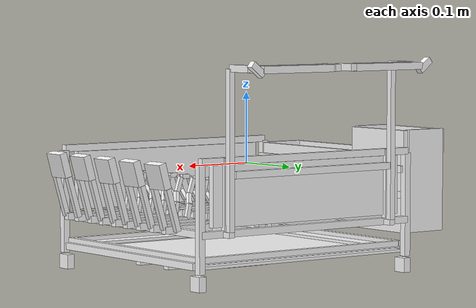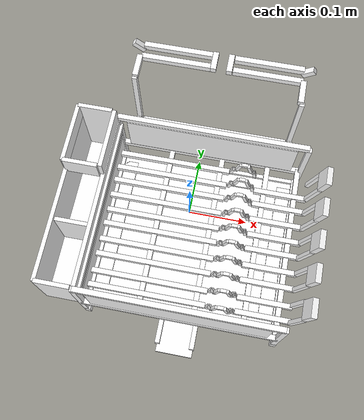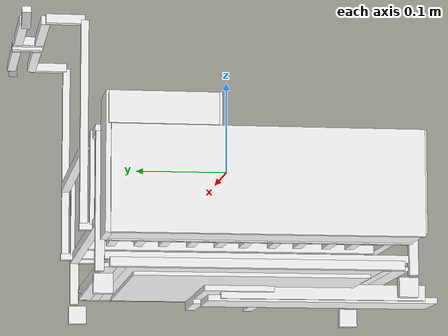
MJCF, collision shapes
<?xml version='1.0' encoding='utf-8'?>
<mujoco model="model">
  <option timestep="0.002" gravity="0.0 0.0 -9.81" />
  <compiler angle="radian" />
  <asset>
    <mesh file="visual/DishRack040.obj" name="DishRack040_vis" />
    <texture file="visual/T_BC001.png" name="DishRack040_material" type="2d" />
    <material name="DishRack040_material" rgba="1 1 1 1.0" texture="DishRack040_material" shininess="0.4472135901451111" specular="0.3103448502657381" />
  </asset>
  <default>
    <default class="visual">
      <geom conaffinity="0" contype="0" group="1" type="mesh" />
    </default>
    <default class="collision">
      <geom group="0" rgba="1 1 1 0.25" density="1.0" solref="0.004 1" solimp="0.998 0.998 0.001" />
    </default>
    <default class="spawn">
      <geom group="0" rgba="1 1 1 0.5" contype="0" conaffinity="0" />
      <site group="0" rgba="1 1 1 0.5" />
    </default>
    <default class="region">
      <geom group="1" conaffinity="0" contype="0" rgba="0 1 0 0" mass="0" />
    </default>
  </default>
  <worldbody>
    <body>
      <body name="object">
        <geom mesh="DishRack040_vis" type="mesh" solimp="0.998 0.998 0.001" solref="0.001 1" friction="0.95 0.3 0.1" class="visual" material="DishRack040_material" />
        <geom type="box" pos="0.01366315 -0.14899265 -0.11953196" size="0.17346982657909393 0.004780089948326349 0.004780103452503681" quat="1.0 0.0 0.0 0.0" class="collision" />
        <geom type="box" pos="0.01348821 -0.01163809 -0.12201339" size="0.1752840280532837 0.15952953696250916 0.0020535136573016644" quat="1.0 0.0 0.0 0.0" class="collision" />
        <geom type="box" pos="0.01366315 0.12955659 -0.11953196" size="0.17346982657909393 0.004780089948326349 0.004780103452503681" quat="1.0 0.0 0.0 0.0" class="collision" />
        <geom type="box" pos="-0.16702763 -0.01106968 -0.11953196" size="0.004780096933245659 0.15389317274093628 0.004780089948326349" quat="1.0 0.0 0.0 0.0" class="collision" />
        <geom type="box" pos="0.19191583 -0.01106968 -0.11953196" size="0.004780096933245659 0.15389317274093628 0.004780089948326349" quat="1.0 0.0 0.0 0.0" class="collision" />
        <geom type="box" pos="0.19175591 -0.17466898 -0.05659135" size="0.00478009320795536 0.00478009320795536 0.07263831049203873" quat="1.0 0.0 0.0 0.0" class="collision" />
        <geom type="box" pos="-0.16436014 -0.17466898 -0.05659135" size="0.00478009320795536 0.00478009320795536 0.07263831794261932" quat="1.0 0.0 0.0 0.0" class="collision" />
        <geom type="box" pos="0.01366315 -0.17563126 0.01907153" size="0.17815001308918 0.004780089948326349 0.004780103452503681" quat="1.0 0.0 0.0 0.0" class="collision" />
        <geom type="box" pos="0.19175591 0.15326559 -0.05659135" size="0.00478009320795536 0.00478009320795536 0.07263832539319992" quat="1.0 0.0 0.0 0.0" class="collision" />
        <geom type="box" pos="-0.16436014 0.15326559 -0.05659135" size="0.00478009320795536 0.00478009320795536 0.07263833284378052" quat="1.0 0.0 0.0 0.0" class="collision" />
        <geom type="box" pos="0.01366315 0.15350921 0.01907153" size="0.17815001308918 0.004780089948326349 0.004780103452503681" quat="1.0 0.0 0.0 0.0" class="collision" />
        <geom type="box" pos="0.01366315 0.16722358 0.00102019" size="0.1333996206521988 0.004780089948326349 0.0047800587490201" quat="1.0 0.0 0.0 0.0" class="collision" />
        <geom type="box" pos="0.15288436 0.16710093 0.03293946" size="0.004080297891050577 0.004080297891050577 0.10794998705387115" quat="1.0 0.0 0.0 0.0" class="collision" />
        <geom type="box" pos="-0.12512309 0.16710093 0.03293946" size="0.0040802983567118645 0.0040802983567118645 0.10794998705387115" quat="1.0 0.0 0.0 0.0" class="collision" />
        <geom type="box" pos="0.15288436 0.15654886 -0.02627855" size="0.004080317448824644 0.004080317448824644 0.049622442573308945" quat="1.0 0.0 0.0 0.0" class="collision" />
        <geom type="box" pos="-0.12512309 0.15654886 -0.02627855" size="0.004080317448824644 0.004080317448824644 0.049622442573308945" quat="1.0 0.0 0.0 0.0" class="collision" />
        <geom type="box" pos="0.12786105 -0.01106968 -0.07843900" size="0.004780096933245659 0.16032738983631134 0.004780066665261984" quat="1.0 0.0 0.0 0.0" class="collision" />
        <geom type="box" pos="0.03792597 -0.01106968 -0.07843900" size="0.004780096933245659 0.16032738983631134 0.004780066665261984" quat="1.0 0.0 0.0 0.0" class="collision" />
        <geom type="box" pos="-0.06204754 -0.01106968 -0.07843900" size="0.004780096933245659 0.16032738983631134 0.004780067130923271" quat="1.0 0.0 0.0 0.0" class="collision" />
        <geom type="box" pos="-0.16829801 -0.01106968 -0.07843900" size="0.004780096933245659 0.16032738983631134 0.0047800675965845585" quat="1.0 0.0 0.0 0.0" class="collision" />
        <geom type="box" pos="-0.16619753 -0.01106968 -0.04375087" size="0.004780096933245659 0.16032738983631134 0.0047800675965845585" quat="1.0 0.0 0.0 0.0" class="collision" />
        <geom type="box" pos="-0.16109455 -0.01106968 -0.00706404" size="0.004780097398906946 0.16350683569908142 0.0047800675965845585" quat="1.0 0.0 0.0 0.0" class="collision" />
        <geom type="box" pos="-0.05230524 0.12464474 -0.07435883" size="0.10770559310913086 0.004780089948326349 0.004780126735568047" quat="1.0 0.0 0.0 0.0" class="collision" />
        <geom type="box" pos="-0.05365872 0.09452375 -0.07435883" size="0.10770559310913086 0.004780089948326349 0.004780126269906759" quat="1.0 0.0 0.0 0.0" class="collision" />
        <geom type="box" pos="-0.05365872 0.06684500 -0.07435883" size="0.10770559310913086 0.004780089948326349 0.004780126269906759" quat="1.0 0.0 0.0 0.0" class="collision" />
        <geom type="box" pos="-0.05365872 0.03548660 -0.07435883" size="0.10770559310913086 0.004780089948326349 0.004780125804245472" quat="1.0 0.0 0.0 0.0" class="collision" />
        <geom type="box" pos="-0.05259563 0.00471435 -0.07435883" size="0.10770559310913086 0.004780089948326349 0.004780125338584185" quat="1.0 0.0 0.0 0.0" class="collision" />
        <geom type="box" pos="-0.05259563 -0.02312722 -0.07435883" size="0.10770559310913086 0.004780089948326349 0.004780124872922897" quat="1.0 0.0 0.0 0.0" class="collision" />
        <geom type="box" pos="-0.05259563 -0.05507175 -0.07435883" size="0.10770559310913086 0.004780089948326349 0.00478012440726161" quat="1.0 0.0 0.0 0.0" class="collision" />
        <geom type="box" pos="-0.05259563 -0.08379252 -0.07435883" size="0.10770559310913086 0.004780089948326349 0.004780123941600323" quat="1.0 0.0 0.0 0.0" class="collision" />
        <geom type="box" pos="-0.05259563 -0.11661626 -0.07435883" size="0.10770559310913086 0.004780089948326349 0.004780123475939035" quat="1.0 0.0 0.0 0.0" class="collision" />
        <geom type="box" pos="-0.05259563 -0.14299248 -0.07435883" size="0.10770559310913086 0.004780089948326349 0.004780123475939035" quat="1.0 0.0 0.0 0.0" class="collision" />
        <geom type="box" pos="0.21602330 0.12464474 -0.04486481" size="0.0037713772617280483 0.0037713772617280483 0.029460962861776352" quat="0.1405487060546875 -0.0 -0.9900737404823303 -0.0" class="collision" />
        <geom type="box" pos="0.15881837 0.09452375 -0.07435883" size="0.050277382135391235 0.004780089948326349 0.004780070390552282" quat="1.0 0.0 0.0 0.0" class="collision" />
        <geom type="box" pos="0.15881837 0.06684500 -0.07435883" size="0.050277382135391235 0.004780089948326349 0.00478007085621357" quat="1.0 0.0 0.0 0.0" class="collision" />
        <geom type="box" pos="0.15881837 0.03548660 -0.07435883" size="0.050277382135391235 0.004780089948326349 0.004780071321874857" quat="1.0 0.0 0.0 0.0" class="collision" />
        <geom type="box" pos="0.15931462 0.00471435 -0.07435883" size="0.050277382135391235 0.004780089948326349 0.004780071787536144" quat="1.0 0.0 0.0 0.0" class="collision" />
        <geom type="box" pos="0.15931462 -0.02312722 -0.07435883" size="0.050277382135391235 0.004780089948326349 0.0047800722531974316" quat="1.0 0.0 0.0 0.0" class="collision" />
        <geom type="box" pos="0.15931462 -0.05507175 -0.07435883" size="0.050277382135391235 0.004780089948326349 0.0047800722531974316" quat="1.0 0.0 0.0 0.0" class="collision" />
        <geom type="box" pos="0.15931462 -0.08379252 -0.07435883" size="0.050277382135391235 0.004780089948326349 0.004780072718858719" quat="1.0 0.0 0.0 0.0" class="collision" />
        <geom type="box" pos="0.15931462 -0.11661626 -0.07435883" size="0.050277382135391235 0.004780089948326349 0.004780073184520006" quat="1.0 0.0 0.0 0.0" class="collision" />
        <geom type="box" pos="0.15931462 -0.14299248 -0.07435883" size="0.050277382135391235 0.004780089948326349 0.0047800736501812935" quat="1.0 0.0 0.0 0.0" class="collision" />
        <geom type="box" pos="0.10380656 -0.05591560 -0.06217969" size="0.002910762559622526 0.0029107623267918825 0.010570663027465343" quat="0.10435331612825394 0.0 0.994540274143219 0.0" class="collision" />
        <geom type="box" pos="0.09256197 -0.06330690 -0.02763671" size="0.0029107623267918825 0.0029107623267918825 0.010570662096142769" quat="0.15572857856750488 0.0 0.987799882888794 0.0" class="collision" />
        <geom type="box" pos="0.09888213 -0.06079009 -0.04532047" size="0.0029107623267918825 0.0029107623267918825 0.007877163589000702" quat="0.15189847350120544 -0.03432556986808777 0.963505208492279 0.21773000061511993" class="collision" />
        <geom type="box" pos="0.06079506 -0.05591560 -0.06217969" size="0.0029107623267918825 0.0029107623267918825 0.010570662096142769" quat="0.10435343533754349 -0.0 -0.994540274143219 -0.0" class="collision" />
        <geom type="box" pos="0.07203964 -0.06330690 -0.02763671" size="0.0029107623267918825 0.0029107623267918825 0.010570663027465343" quat="0.15572869777679443 -0.0 -0.987799882888794 -0.0" class="collision" />
        <geom type="box" pos="0.06571948 -0.06079009 -0.04532047" size="0.0029107623267918825 0.002910762559622526 0.007877163589000702" quat="0.151898592710495 -0.034325581043958664 -0.963505208492279 -0.21772995591163635" class="collision" />
        <geom type="box" pos="0.08220820 -0.06330690 -0.01699015" size="0.005794894881546497 0.0029107623267918825 0.002910763258114457" quat="1.0 0.0 0.0 0.0" class="collision" />
        <geom type="box" pos="0.10380656 -0.08569743 -0.06217969" size="0.002910762559622526 0.0029107623267918825 0.010570663027465343" quat="0.10435331612825394 0.0 0.994540274143219 0.0" class="collision" />
        <geom type="box" pos="0.09256197 -0.09308873 -0.02763671" size="0.0029107623267918825 0.0029107623267918825 0.010570662096142769" quat="0.15572857856750488 0.0 0.987799882888794 0.0" class="collision" />
        <geom type="box" pos="0.09888213 -0.09057192 -0.04532047" size="0.0029107623267918825 0.0029107623267918825 0.007877163589000702" quat="0.15189847350120544 -0.03432556986808777 0.963505208492279 0.21773000061511993" class="collision" />
        <geom type="box" pos="0.06079506 -0.08569743 -0.06217969" size="0.0029107623267918825 0.0029107623267918825 0.010570662096142769" quat="0.10435343533754349 -0.0 -0.994540274143219 -0.0" class="collision" />
        <geom type="box" pos="0.07203964 -0.09308873 -0.02763671" size="0.0029107623267918825 0.0029107623267918825 0.010570663027465343" quat="0.15572869777679443 -0.0 -0.987799882888794 -0.0" class="collision" />
        <geom type="box" pos="0.06571948 -0.09057192 -0.04532047" size="0.0029107623267918825 0.002910762559622526 0.007877163589000702" quat="0.151898592710495 -0.034325581043958664 -0.963505208492279 -0.21772995591163635" class="collision" />
        <geom type="box" pos="0.08220820 -0.09308873 -0.01699015" size="0.005794894881546497 0.0029107623267918825 0.002910763258114457" quat="1.0 0.0 0.0 0.0" class="collision" />
        <geom type="box" pos="0.10380656 -0.11584201 -0.06217969" size="0.002910762559622526 0.0029107623267918825 0.010570663027465343" quat="0.10435331612825394 0.0 0.994540274143219 0.0" class="collision" />
        <geom type="box" pos="0.09256197 -0.12323331 -0.02763671" size="0.0029107623267918825 0.0029107623267918825 0.010570662096142769" quat="0.15572857856750488 0.0 0.987799882888794 0.0" class="collision" />
        <geom type="box" pos="0.09888213 -0.12071650 -0.04532047" size="0.0029107623267918825 0.0029107623267918825 0.007877163589000702" quat="0.15189847350120544 -0.03432556986808777 0.963505208492279 0.21773000061511993" class="collision" />
        <geom type="box" pos="0.06079506 -0.11584201 -0.06217969" size="0.0029107623267918825 0.0029107623267918825 0.010570662096142769" quat="0.10435343533754349 -0.0 -0.994540274143219 -0.0" class="collision" />
        <geom type="box" pos="0.07203964 -0.12323331 -0.02763671" size="0.0029107623267918825 0.0029107623267918825 0.010570663027465343" quat="0.15572869777679443 -0.0 -0.987799882888794 -0.0" class="collision" />
        <geom type="box" pos="0.06571948 -0.12071650 -0.04532047" size="0.0029107623267918825 0.002910762559622526 0.007877163589000702" quat="0.151898592710495 -0.034325581043958664 -0.963505208492279 -0.21772995591163635" class="collision" />
        <geom type="box" pos="0.08220820 -0.12323331 -0.01699015" size="0.005794894881546497 0.0029107623267918825 0.002910763258114457" quat="1.0 0.0 0.0 0.0" class="collision" />
        <geom type="box" pos="0.10380656 -0.14549031 -0.06217969" size="0.002910762559622526 0.0029107623267918825 0.010570663027465343" quat="0.10435331612825394 0.0 0.994540274143219 0.0" class="collision" />
        <geom type="box" pos="0.09256197 -0.15288162 -0.02763671" size="0.0029107623267918825 0.0029107623267918825 0.010570662096142769" quat="0.15572857856750488 0.0 0.987799882888794 0.0" class="collision" />
        <geom type="box" pos="0.09888213 -0.15036481 -0.04532047" size="0.0029107623267918825 0.0029107623267918825 0.007877163589000702" quat="0.15189847350120544 -0.03432556986808777 0.963505208492279 0.21773000061511993" class="collision" />
        <geom type="box" pos="0.06079506 -0.14549031 -0.06217969" size="0.0029107623267918825 0.0029107623267918825 0.010570662096142769" quat="0.10435343533754349 -0.0 -0.994540274143219 -0.0" class="collision" />
        <geom type="box" pos="0.07203964 -0.15288162 -0.02763671" size="0.0029107623267918825 0.0029107623267918825 0.010570663027465343" quat="0.15572869777679443 -0.0 -0.987799882888794 -0.0" class="collision" />
        <geom type="box" pos="0.06571948 -0.15036481 -0.04532047" size="0.0029107623267918825 0.002910762559622526 0.007877163589000702" quat="0.151898592710495 -0.034325581043958664 -0.963505208492279 -0.21772995591163635" class="collision" />
        <geom type="box" pos="0.08220820 -0.15288162 -0.01699015" size="0.005794894881546497 0.0029107623267918825 0.002910763258114457" quat="1.0 0.0 0.0 0.0" class="collision" />
        <geom type="box" pos="0.10380656 -0.02640440 -0.06217969" size="0.002910762559622526 0.0029107623267918825 0.010570663027465343" quat="0.10435331612825394 0.0 0.994540274143219 0.0" class="collision" />
        <geom type="box" pos="0.09256197 -0.03379571 -0.02763671" size="0.0029107623267918825 0.0029107623267918825 0.010570662096142769" quat="0.15572857856750488 0.0 0.987799882888794 0.0" class="collision" />
        <geom type="box" pos="0.09888213 -0.03127890 -0.04532047" size="0.0029107623267918825 0.0029107623267918825 0.007877163589000702" quat="0.15189847350120544 -0.03432556986808777 0.963505208492279 0.21773000061511993" class="collision" />
        <geom type="box" pos="0.06079506 -0.02640440 -0.06217969" size="0.0029107623267918825 0.0029107623267918825 0.010570662096142769" quat="0.10435343533754349 -0.0 -0.994540274143219 -0.0" class="collision" />
        <geom type="box" pos="0.07203964 -0.03379571 -0.02763671" size="0.0029107623267918825 0.0029107623267918825 0.010570663027465343" quat="0.15572869777679443 -0.0 -0.987799882888794 -0.0" class="collision" />
        <geom type="box" pos="0.06571948 -0.03127890 -0.04532047" size="0.0029107623267918825 0.002910762559622526 0.007877163589000702" quat="0.151898592710495 -0.034325581043958664 -0.963505208492279 -0.21772995591163635" class="collision" />
        <geom type="box" pos="0.08220820 -0.03379571 -0.01699015" size="0.005794894881546497 0.0029107623267918825 0.002910763258114457" quat="1.0 0.0 0.0 0.0" class="collision" />
        <geom type="box" pos="0.10380656 0.00367083 -0.06217969" size="0.002910762559622526 0.0029107623267918825 0.010570663027465343" quat="0.10435331612825394 0.0 0.994540274143219 0.0" class="collision" />
        <geom type="box" pos="0.09256197 -0.00372047 -0.02763671" size="0.0029107623267918825 0.0029107623267918825 0.010570662096142769" quat="0.15572857856750488 0.0 0.987799882888794 0.0" class="collision" />
        <geom type="box" pos="0.09888213 -0.00120367 -0.04532047" size="0.0029107623267918825 0.0029107623267918825 0.007877163589000702" quat="0.15189847350120544 -0.03432556986808777 0.963505208492279 0.21773000061511993" class="collision" />
        <geom type="box" pos="0.06079506 0.00367083 -0.06217969" size="0.0029107623267918825 0.0029107623267918825 0.010570662096142769" quat="0.10435343533754349 -0.0 -0.994540274143219 -0.0" class="collision" />
        <geom type="box" pos="0.07203964 -0.00372047 -0.02763671" size="0.0029107623267918825 0.0029107623267918825 0.010570663027465343" quat="0.15572869777679443 -0.0 -0.987799882888794 -0.0" class="collision" />
        <geom type="box" pos="0.06571948 -0.00120367 -0.04532047" size="0.0029107623267918825 0.002910762559622526 0.007877163589000702" quat="0.151898592710495 -0.034325581043958664 -0.963505208492279 -0.21772995591163635" class="collision" />
        <geom type="box" pos="0.08220820 -0.00372047 -0.01699015" size="0.005794894881546497 0.0029107623267918825 0.002910763258114457" quat="1.0 0.0 0.0 0.0" class="collision" />
        <geom type="box" pos="0.10380656 0.03397648 -0.06217969" size="0.002910762559622526 0.0029107623267918825 0.010570663027465343" quat="0.10435331612825394 0.0 0.994540274143219 0.0" class="collision" />
        <geom type="box" pos="0.09256197 0.02658517 -0.02763671" size="0.0029107623267918825 0.0029107623267918825 0.010570662096142769" quat="0.15572857856750488 0.0 0.987799882888794 0.0" class="collision" />
        <geom type="box" pos="0.09888213 0.02910198 -0.04532047" size="0.0029107623267918825 0.0029107623267918825 0.007877163589000702" quat="0.15189847350120544 -0.03432556986808777 0.963505208492279 0.21773000061511993" class="collision" />
        <geom type="box" pos="0.06079506 0.03397648 -0.06217969" size="0.0029107623267918825 0.0029107623267918825 0.010570662096142769" quat="0.10435343533754349 -0.0 -0.994540274143219 -0.0" class="collision" />
        <geom type="box" pos="0.07203964 0.02658517 -0.02763671" size="0.0029107623267918825 0.0029107623267918825 0.010570663027465343" quat="0.15572869777679443 -0.0 -0.987799882888794 -0.0" class="collision" />
        <geom type="box" pos="0.06571948 0.02910198 -0.04532047" size="0.0029107623267918825 0.002910762559622526 0.007877163589000702" quat="0.151898592710495 -0.034325581043958664 -0.963505208492279 -0.21772995591163635" class="collision" />
        <geom type="box" pos="0.08220820 0.02658517 -0.01699015" size="0.005794894881546497 0.0029107623267918825 0.002910763258114457" quat="1.0 0.0 0.0 0.0" class="collision" />
        <geom type="box" pos="0.10380656 0.06424525 -0.06217969" size="0.002910762559622526 0.0029107623267918825 0.010570663027465343" quat="0.10435331612825394 0.0 0.994540274143219 0.0" class="collision" />
        <geom type="box" pos="0.09256197 0.05685395 -0.02763671" size="0.0029107623267918825 0.0029107623267918825 0.010570662096142769" quat="0.15572857856750488 0.0 0.987799882888794 0.0" class="collision" />
        <geom type="box" pos="0.09888213 0.05937075 -0.04532047" size="0.0029107623267918825 0.0029107623267918825 0.007877163589000702" quat="0.15189847350120544 -0.03432556986808777 0.963505208492279 0.21773000061511993" class="collision" />
        <geom type="box" pos="0.06079506 0.06424525 -0.06217969" size="0.0029107623267918825 0.0029107623267918825 0.010570662096142769" quat="0.10435343533754349 -0.0 -0.994540274143219 -0.0" class="collision" />
        <geom type="box" pos="0.07203964 0.05685395 -0.02763671" size="0.0029107623267918825 0.0029107623267918825 0.010570663027465343" quat="0.15572869777679443 -0.0 -0.987799882888794 -0.0" class="collision" />
        <geom type="box" pos="0.06571948 0.05937075 -0.04532047" size="0.0029107623267918825 0.002910762559622526 0.007877163589000702" quat="0.151898592710495 -0.034325581043958664 -0.963505208492279 -0.21772995591163635" class="collision" />
        <geom type="box" pos="0.08220820 0.05685395 -0.01699015" size="0.005794894881546497 0.0029107623267918825 0.002910763258114457" quat="1.0 0.0 0.0 0.0" class="collision" />
        <geom type="box" pos="0.10380656 0.09427927 -0.06217969" size="0.002910762559622526 0.0029107623267918825 0.010570663027465343" quat="0.10435331612825394 0.0 0.994540274143219 0.0" class="collision" />
        <geom type="box" pos="0.09256197 0.08688796 -0.02763671" size="0.0029107623267918825 0.0029107623267918825 0.010570662096142769" quat="0.15572857856750488 0.0 0.987799882888794 0.0" class="collision" />
        <geom type="box" pos="0.09888213 0.08940477 -0.04532047" size="0.0029107623267918825 0.0029107623267918825 0.007877163589000702" quat="0.15189847350120544 -0.03432556986808777 0.963505208492279 0.21773000061511993" class="collision" />
        <geom type="box" pos="0.06079506 0.09427927 -0.06217969" size="0.0029107623267918825 0.0029107623267918825 0.010570662096142769" quat="0.10435343533754349 -0.0 -0.994540274143219 -0.0" class="collision" />
        <geom type="box" pos="0.07203964 0.08688796 -0.02763671" size="0.0029107623267918825 0.0029107623267918825 0.010570663027465343" quat="0.15572869777679443 -0.0 -0.987799882888794 -0.0" class="collision" />
        <geom type="box" pos="0.06571948 0.08940477 -0.04532047" size="0.0029107623267918825 0.002910762559622526 0.007877163589000702" quat="0.151898592710495 -0.034325581043958664 -0.963505208492279 -0.21772995591163635" class="collision" />
        <geom type="box" pos="0.08220820 0.08688796 -0.01699015" size="0.005794894881546497 0.0029107623267918825 0.002910763258114457" quat="1.0 0.0 0.0 0.0" class="collision" />
        <geom type="box" pos="0.10380656 0.12389441 -0.06217969" size="0.002910762559622526 0.0029107623267918825 0.010570663027465343" quat="0.10435331612825394 0.0 0.994540274143219 0.0" class="collision" />
        <geom type="box" pos="0.09256197 0.11650310 -0.02763671" size="0.0029107623267918825 0.0029107623267918825 0.010570662096142769" quat="0.15572857856750488 0.0 0.987799882888794 0.0" class="collision" />
        <geom type="box" pos="0.09888213 0.11901991 -0.04532047" size="0.0029107623267918825 0.0029107623267918825 0.007877163589000702" quat="0.15189847350120544 -0.03432556986808777 0.963505208492279 0.21773000061511993" class="collision" />
        <geom type="box" pos="0.06079506 0.12389441 -0.06217969" size="0.0029107623267918825 0.0029107623267918825 0.010570662096142769" quat="0.10435343533754349 -0.0 -0.994540274143219 -0.0" class="collision" />
        <geom type="box" pos="0.07203964 0.11650310 -0.02763671" size="0.0029107623267918825 0.0029107623267918825 0.010570663027465343" quat="0.15572869777679443 -0.0 -0.987799882888794 -0.0" class="collision" />
        <geom type="box" pos="0.06571948 0.11901991 -0.04532047" size="0.0029107623267918825 0.002910762559622526 0.007877163589000702" quat="0.151898592710495 -0.034325581043958664 -0.963505208492279 -0.21772995591163635" class="collision" />
        <geom type="box" pos="0.08220820 0.11650310 -0.01699015" size="0.005794894881546497 0.0029107623267918825 0.002910763258114457" quat="1.0 0.0 0.0 0.0" class="collision" />
        <geom type="box" pos="0.21602330 0.09414179 -0.04486481" size="0.0037713772617280483 0.0037713772617280483 0.029460962861776352" quat="0.1405487060546875 -0.0 -0.9900737404823303 -0.0" class="collision" />
        <geom type="box" pos="0.21602330 0.06484879 -0.04486481" size="0.0037713772617280483 0.0037713772617280483 0.029460962861776352" quat="0.1405487060546875 -0.0 -0.9900737404823303 -0.0" class="collision" />
        <geom type="box" pos="0.21602330 0.03395666 -0.04486481" size="0.0037713772617280483 0.0037713772617280483 0.029460962861776352" quat="0.1405487060546875 -0.0 -0.9900737404823303 -0.0" class="collision" />
        <geom type="box" pos="0.21602330 0.00453034 -0.04486481" size="0.0037713772617280483 0.0037713772617280483 0.029460962861776352" quat="0.1405487060546875 -0.0 -0.9900737404823303 -0.0" class="collision" />
        <geom type="box" pos="0.21602330 -0.02532157 -0.04486481" size="0.0037713772617280483 0.0037713772617280483 0.029460962861776352" quat="0.1405487060546875 -0.0 -0.9900737404823303 -0.0" class="collision" />
        <geom type="box" pos="0.21602330 -0.05537043 -0.04486481" size="0.0037713772617280483 0.0037713772617280483 0.029460962861776352" quat="0.1405487060546875 -0.0 -0.9900737404823303 -0.0" class="collision" />
        <geom type="box" pos="0.21602330 -0.08528804 -0.04486481" size="0.0037713772617280483 0.0037713772617280483 0.029460962861776352" quat="0.1405487060546875 -0.0 -0.9900737404823303 -0.0" class="collision" />
        <geom type="box" pos="0.21602330 -0.11467946 -0.04486481" size="0.0037713772617280483 0.0037713772617280483 0.029460962861776352" quat="0.1405487060546875 -0.0 -0.9900737404823303 -0.0" class="collision" />
        <geom type="box" pos="0.21602330 -0.14552114 -0.04486481" size="0.0037713772617280483 0.0037713772617280483 0.029460962861776352" quat="0.1405487060546875 -0.0 -0.9900737404823303 -0.0" class="collision" />
        <geom type="box" pos="0.18650616 -0.01106968 -0.07705919" size="0.004780097398906946 0.16499696671962738 0.004780089948326349" quat="1.0 0.0 0.0 0.0" class="collision" />
        <geom type="box" pos="-0.06326750 0.20800903 0.14121846" size="0.05824814364314079 0.004780089948326349 0.004780094139277935" quat="1.0 0.0 0.0 0.0" class="collision" />
        <geom type="box" pos="0.09108226 0.20800903 0.14121846" size="0.05824814364314079 0.004780089948326349 0.004780094139277935" quat="1.0 0.0 0.0 0.0" class="collision" />
        <geom type="box" pos="-0.12432358 0.18773841 0.14163552" size="0.004780090879648924 0.020439039915800095 0.004780089948326349" quat="1.0 0.0 0.0 0.0" class="collision" />
        <geom type="box" pos="0.15018453 0.18773841 0.14163552" size="0.004780090879648924 0.020439039915800095 0.004780089948326349" quat="1.0 0.0 0.0 0.0" class="collision" />
        <geom type="box" pos="-0.06326750 0.23096611 0.14121846" size="0.05824814364314079 0.004780089948326349 0.004780094139277935" quat="1.0 0.0 0.0 0.0" class="collision" />
        <geom type="box" pos="0.09108226 0.23096611 0.14121846" size="0.05824814364314079 0.004780089948326349 0.004780094139277935" quat="1.0 0.0 0.0 0.0" class="collision" />
        <geom type="box" pos="-0.12942829 0.22912774 0.14163552" size="0.004780089948326349 0.004780089948326349 0.011501421220600605" quat="0.3102211058139801 0.6354233026504517 0.6354234218597412 0.3102211058139801" class="collision" />
        <geom type="box" pos="0.15657047 0.22912774 0.14163552" size="0.004780089948326349 0.004780089948326349 0.011501421220600605" quat="0.31022119522094727 -0.6354233026504517 -0.6354234218597412 0.31022101640701294" class="collision" />
        <geom type="box" pos="0.02674380 0.21961883 0.14163552" size="0.0047800904139876366 0.01681361347436905 0.004780089948326349" quat="1.0 0.0 0.0 0.0" class="collision" />
        <geom type="box" pos="-0.00006245 0.21961883 0.14163552" size="0.0047800904139876366 0.01681361347436905 0.004780089948326349" quat="1.0 0.0 0.0 0.0" class="collision" />
        <geom type="box" pos="0.01348821 -0.01163809 -0.12608717" size="0.1378050595521927 0.12541987001895905 0.0020535094663500786" quat="1.0 0.0 0.0 0.0" class="collision" />
        <geom type="box" pos="0.01348821 -0.15338157 -0.11606823" size="0.1752840131521225 0.014941152185201645 0.0020535218063741922" quat="1.0 0.0 0.0 0.0" class="collision" />
        <geom type="box" pos="0.01348821 0.12972376 -0.11606823" size="0.1752840131521225 0.014941152185201645 0.0020535215735435486" quat="1.0 0.0 0.0 0.0" class="collision" />
        <geom type="box" pos="0.16991388 -0.00540656 -0.11606823" size="0.014941234141588211 0.13324517011642456 0.002053521340712905" quat="1.0 0.0 0.0 0.0" class="collision" />
        <geom type="box" pos="-0.14548806 -0.00540656 -0.11606823" size="0.014941232278943062 0.13324515521526337 0.0020535211078822613" quat="1.0 0.0 0.0 0.0" class="collision" />
        <geom type="box" pos="0.18539575 -0.01106968 -0.11212468" size="0.0038828456308692694 0.15878170728683472 0.003882840508595109" quat="1.0 0.0 0.0 0.0" class="collision" />
        <geom type="box" pos="-0.16086441 -0.01106968 -0.11212468" size="0.003882845863699913 0.1587817221879959 0.0038828407414257526" quat="1.0 0.0 0.0 0.0" class="collision" />
        <geom type="box" pos="0.01193067 -0.16597661 -0.11212468" size="0.17100702226161957 0.003882915247231722 0.0038828530814498663" quat="1.0 0.0 0.0 0.0" class="collision" />
        <geom type="box" pos="0.01193067 0.14258958 -0.11212468" size="0.17100702226161957 0.003882915247231722 0.00388285331428051" quat="1.0 0.0 0.0 0.0" class="collision" />
        <geom type="box" pos="0.11538751 0.02177992 -0.13287397" size="0.03887316584587097 0.005578517913818359 0.005048004444688559" quat="1.0 0.0 0.0 0.0" class="collision" />
        <geom type="box" pos="0.11538751 -0.04512261 -0.13287397" size="0.03887316584587097 0.005578517913818359 0.005048004444688559" quat="1.0 0.0 0.0 0.0" class="collision" />
        <geom type="box" pos="0.01348821 -0.10417641 -0.14046790" size="0.03398590907454491 0.12691304087638855 0.0033008079044520855" quat="1.0 0.0 0.0 0.0" class="collision" />
        <geom type="box" pos="0.01348821 -0.01023716 -0.12975552" size="0.04670342430472374 0.038526035845279694 0.0044117639772593975" quat="1.0 0.0 0.0 0.0" class="collision" />
        <geom type="box" pos="-0.01970951 -0.10417641 -0.13288753" size="0.004427243024110794 0.1129511371254921 0.0085249999538064" quat="1.0 0.0 0.0 0.0" class="collision" />
        <geom type="box" pos="0.04472419 -0.10417641 -0.13288753" size="0.004427243024110794 0.1129511222243309 0.008524999022483826" quat="1.0 0.0 0.0 0.0" class="collision" />
        <geom type="box" pos="0.01366315 -0.17563126 -0.07652089" size="0.17815001308918 0.004780089948326349 0.004780103452503681" quat="1.0 0.0 0.0 0.0" class="collision" />
        <geom type="box" pos="0.01366315 0.15350921 -0.07742048" size="0.17815001308918 0.004780089948326349 0.004780103452503681" quat="1.0 0.0 0.0 0.0" class="collision" />
        <geom type="box" pos="0.19215351 0.14933096 -0.14170131" size="0.005604991689324379 0.010191744193434715 0.010191744193434715" quat="1.0 0.0 0.0 0.0" class="collision" />
        <geom type="box" pos="0.19215351 -0.16942576 -0.14170131" size="0.005604991689324379 0.010191744193434715 0.010191744193434715" quat="1.0 0.0 0.0 0.0" class="collision" />
        <geom type="box" pos="-0.16266642 0.14933096 -0.14170131" size="0.005604991689324379 0.010191744193434715 0.010191744193434715" quat="1.0 0.0 0.0 0.0" class="collision" />
        <geom type="box" pos="-0.16266642 -0.16942576 -0.14170131" size="0.005604991689324379 0.010191744193434715 0.010191744193434715" quat="1.0 0.0 0.0 0.0" class="collision" />
        <geom type="box" pos="0.22891807 -0.13043436 0.00019185" size="0.005604991689324379 0.017355099320411682 0.017355099320411682" quat="0.9910476207733154 -1.2251812774353261e-15 0.13350863754749298 1.7938074137191506e-08" class="collision" />
        <geom type="box" pos="0.22891807 -0.07039589 0.00019185" size="0.005604991689324379 0.017355099320411682 0.017355099320411682" quat="0.9910476207733154 -1.2251812774353261e-15 0.13350863754749298 1.7938074137191506e-08" class="collision" />
        <geom type="box" pos="0.22891807 -0.01015389 0.00019185" size="0.005604991689324379 0.017355099320411682 0.017355099320411682" quat="0.9910476207733154 -1.2251812774353261e-15 0.13350863754749298 1.7938074137191506e-08" class="collision" />
        <geom type="box" pos="0.22891807 0.04988457 0.00019185" size="0.005604991689324379 0.017355099320411682 0.017355099320411682" quat="0.9910476207733154 -1.2251812774353261e-15 0.13350863754749298 1.7938074137191506e-08" class="collision" />
        <geom type="box" pos="0.22891807 0.10951600 0.00019185" size="0.005604991689324379 0.017355099320411682 0.017355099320411682" quat="0.9910476207733154 -1.2251812774353261e-15 0.13350863754749298 1.7938074137191506e-08" class="collision" />
        <geom type="box" pos="0.01303409 -0.17411911 -0.02737918" size="0.15947897732257843 0.004853794816881418 0.04129054397344589" quat="1.0 0.0 0.0 0.0" class="collision" />
        <geom type="box" pos="0.01303409 0.15155465 -0.02737918" size="0.15947885811328888 0.00441533699631691 0.041290514171123505" quat="1.0 0.0 0.0 0.0" class="collision" />
        <geom type="box" pos="-0.20261509 -0.17191111 -0.04032089" size="0.03145381808280945 0.003781513776630163 0.05391976609826088" quat="1.0 0.0 0.0 0.0" class="collision" />
        <geom type="box" pos="-0.20261509 0.14939598 -0.02468017" size="0.03145381808280945 0.003781513776630163 0.07245219498872757" quat="1.0 0.0 0.0 0.0" class="collision" />
        <geom type="box" pos="-0.20261509 -0.01260926 -0.09191518" size="0.034599605947732925 0.16065335273742676 0.0037815370596945286" quat="1.0 0.0 0.0 0.0" class="collision" />
        <geom type="box" pos="-0.23416124 -0.01260926 -0.04207349" size="0.0037815249525010586 0.1606532335281372 0.055100034922361374" quat="1.0 0.0 0.0 0.0" class="collision" />
        <geom type="box" pos="-0.23416124 0.09424132 0.03025276" size="0.0037815156392753124 0.056220892816782 0.0166521817445755" quat="1.0 0.0 0.0 0.0" class="collision" />
        <geom type="box" pos="-0.16688288 0.09424132 0.03025276" size="0.003781515872105956 0.056220900267362595 0.01665218360722065" quat="1.0 0.0 0.0 0.0" class="collision" />
        <geom type="box" pos="-0.16539852 -0.01260926 -0.04207349" size="0.0037815249525010586 0.1606532782316208 0.055100034922361374" quat="1.0 0.0 0.0 0.0" class="collision" />
        <geom type="box" pos="-0.20261509 0.03849839 0.02788080" size="0.03145381808280945 0.003781513776630163 0.020319823175668716" quat="1.0 0.0 0.0 0.0" class="collision" />
        <geom type="box" pos="-0.19879467 -0.05722301 -0.04315506" size="0.03145381063222885 0.0037815123796463013 0.04941888153553009" quat="1.0 0.0 0.0 0.0" class="collision" />
        <geom type="box" pos="0.15382614 0.16155227 -0.07797087" size="0.004394250456243753 0.010191744193434715 0.0038108965381979942" quat="1.0 0.0 0.0 0.0" class="collision" />
        <geom type="box" pos="-0.12434862 0.16155227 -0.07797087" size="0.004394249990582466 0.010191744193434715 0.0038108965381979942" quat="1.0 0.0 0.0 0.0" class="collision" />
        <geom class="region" name="reg_int_0" type="box" pos="-0.049731794999999995 -0.010279294999999994 0.03121637" size="0.106176835 0.156889065 0.10110325" />
        <geom class="region" name="reg_int_1" type="box" pos="0.15707768 -0.010279294999999994 0.031216429999999996" size="0.04854069 0.156889065 0.10110331" />
        <geom size="0.23793354 0.23340147 0.15409029" pos="-0.0 0.0 0.0" name="reg_bbox" class="region" type="box" quat="1.0 0.0 0.0 0.0" />
        </body>
    </body>
  </worldbody>
  <actuator />
</mujoco>
